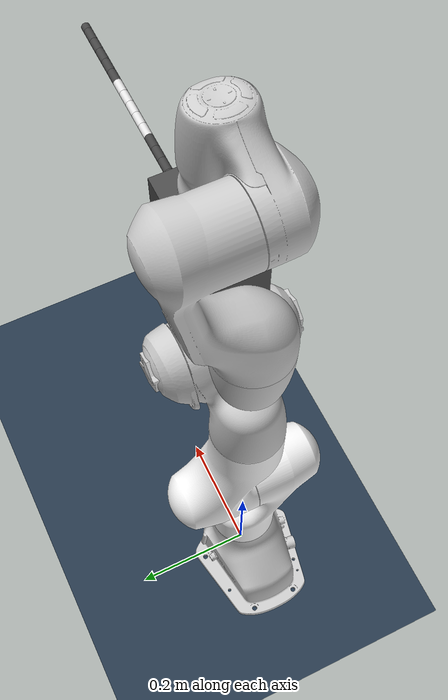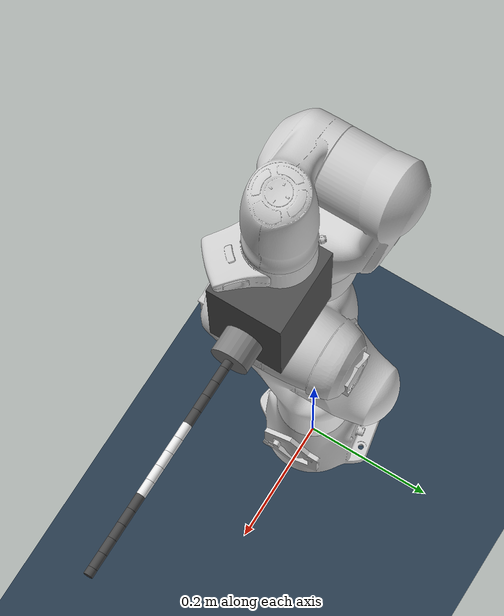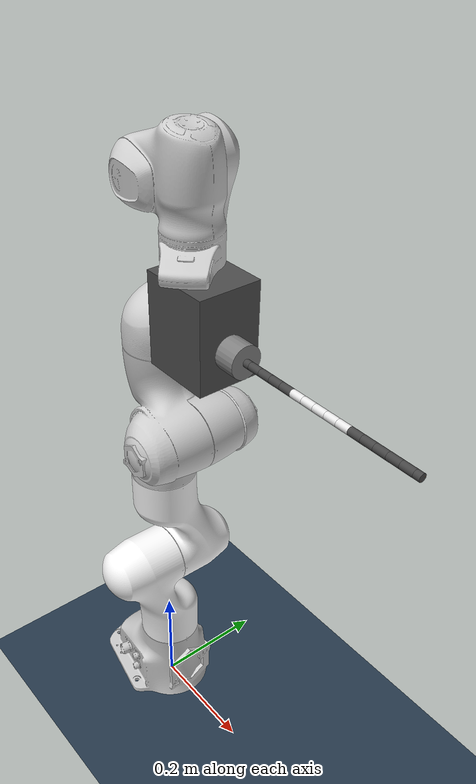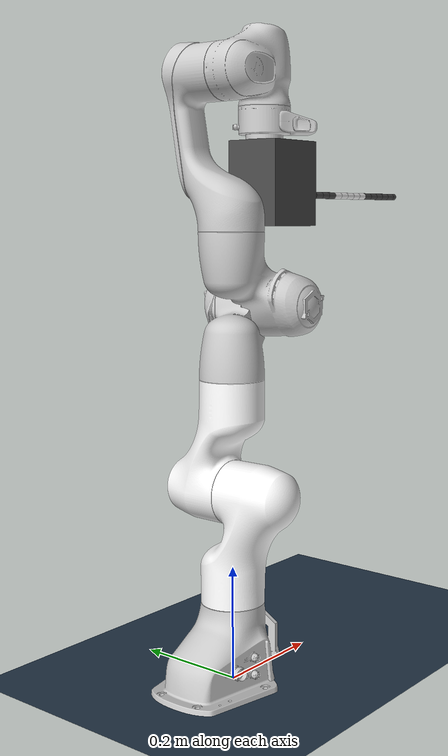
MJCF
<?xml version='1.0' encoding='utf-8'?>
<mujoco>
    <compiler angle="radian" autolimits="true" />
    <option gravity="0 0 0" noslip_iterations="1" />
    <default>
        <joint axis="0 0 1" limited="true" />
        <geom contype="0" conaffinity="0" condim="1" friction="1.0 0.005 0.0001" />
        <motor ctrllimited="true" ctrlrange="-80 80" />
        <default class="tdcr_collision">
            <geom contype="1" conaffinity="1" condim="3" friction="1.0 0.005 0.0001" solimp="0.8 0.95 0.001" />
        </default>
        <default class="planar_link">
            <joint stiffness="0.1963495408493621" damping="0.3" limited="false" axis="0 0 1" pos="0 0 0" type="hinge" />
        </default>
        <default class="vertical_link">
            <joint stiffness="0.1963495408493621" damping="0.3" limited="false" axis="0 -1 0" pos="0 0 0" type="hinge" />
        </default>
    </default>
    <asset>
        <material name="panda_white" rgba="1 1 1 1" shininess="0.4" specular="0.4" />
        <material name="panda" rgba="0.8 0.8 0.8 1" shininess="0.4" specular="0.4" />
        <material name="mount_adapter" rgba="0.3 0.3 0.3 1" shininess="0.2" specular="0.2" />
        <material name="mount_connector" rgba="0.5 0.5 0.5 1" shininess="0.3" specular="0.3" />
        <texture type="skybox" builtin="gradient" rgb1="1 1 1" rgb2=".6 .8 1" width="256" height="256" />
        <texture name="texplane" type="2d" builtin="checker" rgb1=".2 .3 .4" rgb2=".1 0.15 0.2" width="512" height="512" />
        <material name="MatGnd" reflectance="0.5" texture="texplane" texrepeat="1 1" texuniform="true" />
        <mesh name="link0" file="franka_assets/meshes/visual/link0.stl" />
        <mesh name="link1" file="franka_assets/meshes/visual/link1.stl" />
        <mesh name="link2" file="franka_assets/meshes/visual/link2.stl" />
        <mesh name="link3" file="franka_assets/meshes/visual/link3.stl" />
        <mesh name="link4" file="franka_assets/meshes/visual/link4.stl" />
        <mesh name="link5" file="franka_assets/meshes/visual/link5.stl" />
        <mesh name="link6" file="franka_assets/meshes/visual/link6.stl" />
        <mesh name="link7" file="franka_assets/meshes/visual/link7.stl" />
        <material name="matplane" texture="texplane" texrepeat="5 5" reflectance="0.5" texuniform="true" />
    </asset>
    <worldbody>
        <light directional="false" diffuse=".8 .8 .8" specular="0.3 0.3 0.3" pos="1  1 3" dir="-1 -1 -3" />
        <light directional="false" diffuse=".8 .8 .8" specular="0.3 0.3 0.3" pos="1 -1 3" dir="-1 1 -3" />
        <light directional="false" diffuse=".8 .8 .8" specular="0.3 0.3 0.3" pos="-1 0 3" dir="1 0 -3" />
        <geom name="ground" pos="0 0 0" size="5 5 10" material="MatGnd" type="plane" contype="1" conaffinity="1" />
        <body name="panda_link0">
            <geom type="mesh" material="panda" mesh="link0" />
            <inertial pos="-4.1018e-02 -1.4e-04 4.9974e-02" mass="6.29769e-01" fullinertia="3.15e-03 3.88e-03 4.285e-03 8.2904e-07 1.5e-04 8.2299e-06" />
            <body name="panda_link1" pos="0 0 0.333">
                <inertial pos="3.875e-03 2.081e-03 -4.762e-02" mass="4.970684" fullinertia="7.0337e-01 7.0661e-01 9.1170e-03 -1.3900e-04 6.7720e-03 1.9169e-02" />
                <joint name="panda_joint1" pos="0 0 0" axis="0 0 1" limited="true" range="-2.8973 2.8973" damping="100" />
                <geom type="mesh" material="panda_white" mesh="link1" />
                <body name="panda_link2" pos="0 0 0" quat="0.707107 -0.707107 0 0">
                    <inertial pos="-3.141e-03 -2.872e-02 3.495e-03" mass="0.646926" fullinertia="7.9620e-03 2.8110e-02 2.5995e-02 -3.9250e-03 1.0254e-02 7.0400e-04" />
                    <joint name="panda_joint2" pos="0 0 0" axis="0 0 1" limited="true" range="-1.7628 1.7628" damping="100" />
                    <geom type="mesh" material="panda_white" mesh="link2" />
                    <body name="panda_link3" pos="0 -0.316 0" quat="0.707107 0.707107 0 0">
                        <inertial pos="2.7518e-02 3.9252e-02 -6.6502e-02" mass="3.228604" fullinertia="3.7242e-02 3.6155e-02 1.0830e-02 -4.7610e-03 -1.1396e-02 -1.2805e-02" />
                        <joint name="panda_joint3" pos="0 0 0" axis="0 0 1" limited="true" range="-2.8973 2.8973" damping="100" />
                        <geom type="mesh" material="panda" mesh="link3" />
                        <body name="panda_link4" pos="0.0825 0 0" quat="0.707107 0.707107 0 0">
                            <inertial pos="-5.317e-02 1.04419e-01 2.7454e-02" mass="3.587895" fullinertia="2.5853e-02 1.9552e-02 2.8323e-02 7.7960e-03 -1.3320e-03 8.6410e-03" />
                            <joint name="panda_joint4" pos="0 0 0" axis="0 0 1" limited="true" range="-3.0718 -0.0698" damping="100" />
                            <geom type="mesh" material="panda" mesh="link4" />
                            <body name="panda_link5" pos="-0.0825 0.384 0" quat="0.707107 -0.707107 0 0">
                                <inertial pos="-1.1953e-02 4.1065e-02 -3.8437e-02" mass="1.225946" fullinertia="3.5549e-02 2.9474e-02 8.6270e-03 -2.1170e-03 -4.0370e-03 2.2900e-04" />
                                <joint name="panda_joint5" pos="0 0 0" axis="0 0 1" limited="true" range="-2.8973 2.8973" damping="10" />
                                <geom type="mesh" material="panda" mesh="link5" />
                                <body name="panda_link6" pos="0 0 0" quat="0.707107 0.707107 0 0">
                                    <inertial pos="6.0149e-02 -1.4117e-02 -1.0517e-02" mass="1.666555" fullinertia="1.9640e-03 4.3540e-03 5.4330e-03 1.0900e-04 -1.1580e-03 3.4100e-04" />
                                    <joint name="panda_joint6" pos="0 0 0" axis="0 0 1" limited="true" range="-0.0873 3.8223" damping="10" />
                                    <geom type="mesh" material="panda" mesh="link6" />
                                    <body name="panda_link7" pos="0.088 0 0" quat="0.707107 0.707107 0 0">
                                        <inertial pos="1.0517e-02 -4.252e-03 6.1597e-02" mass="7.35522e-01" fullinertia="1.2516e-02 1.0027e-02 4.8150e-03 -4.2800e-04 -1.1960e-03 -7.4100e-04" />
                                        <joint name="panda_joint7" pos="0 0 0" axis="0 0 1" limited="true" range="-2.8973 2.8973" damping="10" />
                                        <geom type="mesh" material="panda" mesh="link7" />
                                        <body name="panda_link8" pos="0 0 0.107">
                                            <body name="end_effector">
                                                <inertial pos="-1e-02 0 3e-02" mass="7.3e-01" diaginertia="1e-03 2.5e-03 1.7e-03" />
                                                <body name="mount" euler="0 -1.57079632679 0">
                                                    <body name="mount_adapter" pos="0 0 -0.0575">
                                                        <geom name="mount_adapter_box" type="box" pos="0.072 0 0.0345" size="0.072 0.05 0.0575" material="mount_adapter" contype="0" conaffinity="0" />
                                                    </body>
                                                    <body name="tdcr_mount" pos="0.09 0.0 -0.115" euler="0.0 1.5708 0.0">
                                                        <geom name="mount_connector_cylinder" type="cylinder" pos="-0.03 0 0" size="0.025 0.03" euler="0 1.5708 0" material="mount_connector" contype="0" conaffinity="0" />
                                                        <body name="link_0" pos="0 0 0">
                                                            <geom fromto="0 0 0 0.010000000000000002 0 0" size="0.006" type="cylinder" rgba="0.274 0.274 0.274 1.000" mass="0.0005923158789078196" name="geom_0" class="tdcr_collision" />
                                                            <joint class="planar_link" name="joint_0_x" />
                                                            <joint class="vertical_link" name="joint_0_z" />
                                                            <site name="l_0_base_seg_0_tendon_0" pos="0 0.004 0.0" rgba="0 0 0 0" />
                                                            <site name="l_0_base_seg_0_tendon_1" pos="0 -0.002 0.003" rgba="0 0 0 0" />
                                                            <site name="l_0_base_seg_0_tendon_2" pos="0 -0.002 -0.003" rgba="0 0 0 0" />
                                                            <body name="link_1" pos="0.010000000000000002 0 0">
                                                                <geom fromto="0 0 0 0.020000000000000004 0 0" size="0.006" type="cylinder" rgba="0.274 0.274 0.274 1.000" mass="0.0005923158789078196" name="geom_1" class="tdcr_collision" />
                                                                <joint class="planar_link" name="joint_1_x" />
                                                                <joint class="vertical_link" name="joint_1_z" />
                                                                <site name="l_1_seg_0_tendon_0" pos="0.010000000000000002 0.004 0.0" rgba="0 0 0 0" />
                                                                <site name="l_1_seg_0_tendon_1" pos="0.010000000000000002 -0.002 0.003" rgba="0 0 0 0" />
                                                                <site name="l_1_seg_0_tendon_2" pos="0.010000000000000002 -0.002 -0.003" rgba="0 0 0 0" />
                                                                <body name="link_2" pos="0.020000000000000004 0 0">
                                                                    <geom fromto="0 0 0 0.020000000000000004 0 0" size="0.006" type="cylinder" rgba="0.274 0.274 0.274 1.000" mass="0.0005923158789078196" name="geom_2" class="tdcr_collision" />
                                                                    <joint class="planar_link" name="joint_2_x" />
                                                                    <joint class="vertical_link" name="joint_2_z" />
                                                                    <site name="l_2_seg_0_tendon_0" pos="0.010000000000000002 0.004 0.0" rgba="0 0 0 0" />
                                                                    <site name="l_2_seg_0_tendon_1" pos="0.010000000000000002 -0.002 0.003" rgba="0 0 0 0" />
                                                                    <site name="l_2_seg_0_tendon_2" pos="0.010000000000000002 -0.002 -0.003" rgba="0 0 0 0" />
                                                                    <body name="link_3" pos="0.020000000000000004 0 0">
                                                                        <geom fromto="0 0 0 0.020000000000000004 0 0" size="0.006" type="cylinder" rgba="0.274 0.274 0.274 1.000" mass="0.0005923158789078196" name="geom_3" class="tdcr_collision" />
                                                                        <joint class="planar_link" name="joint_3_x" />
                                                                        <joint class="vertical_link" name="joint_3_z" />
                                                                        <site name="l_3_seg_0_tendon_0" pos="0.010000000000000002 0.004 0.0" rgba="0 0 0 0" />
                                                                        <site name="l_3_seg_0_tendon_1" pos="0.010000000000000002 -0.002 0.003" rgba="0 0 0 0" />
                                                                        <site name="l_3_seg_0_tendon_2" pos="0.010000000000000002 -0.002 -0.003" rgba="0 0 0 0" />
                                                                        <body name="link_4" pos="0.020000000000000004 0 0">
                                                                            <geom fromto="0 0 0 0.020000000000000004 0 0" size="0.006" type="cylinder" rgba="0.274 0.274 0.274 1.000" mass="0.0005923158789078196" name="geom_4" class="tdcr_collision" />
                                                                            <joint class="planar_link" name="joint_4_x" />
                                                                            <joint class="vertical_link" name="joint_4_z" />
                                                                            <site name="l_4_seg_0_tendon_0" pos="0.010000000000000002 0.004 0.0" rgba="0 0 0 0" />
                                                                            <site name="l_4_seg_0_tendon_1" pos="0.010000000000000002 -0.002 0.003" rgba="0 0 0 0" />
                                                                            <site name="l_4_seg_0_tendon_2" pos="0.010000000000000002 -0.002 -0.003" rgba="0 0 0 0" />
                                                                            <body name="link_5" pos="0.020000000000000004 0 0">
                                                                                <geom fromto="0 0 0 0.020000000000000004 0 0" size="0.006" type="cylinder" rgba="0.910 0.910 0.910 1.000" mass="0.0005923158789078196" name="geom_5" class="tdcr_collision" />
                                                                                <joint class="planar_link" name="joint_5_x" />
                                                                                <joint class="vertical_link" name="joint_5_z" />
                                                                                <site name="l_5_seg_0_tendon_0" pos="0.010000000000000002 0.004 0.0" rgba="0 0 0 0" />
                                                                                <site name="l_5_seg_0_tendon_1" pos="0.010000000000000002 -0.002 0.003" rgba="0 0 0 0" />
                                                                                <site name="l_5_seg_0_tendon_2" pos="0.010000000000000002 -0.002 -0.003" rgba="0 0 0 0" />
                                                                                <site name="l_5_seg_1_tendon_0" pos="0.010000000000000002 0.003464099166331756 0.0020000042414504114" rgba="0 0 0 0" />
                                                                                <site name="l_5_seg_1_tendon_1" pos="0.010000000000000002 -0.0032320527642536864 0.0015980722540236115" rgba="0 0 0 0" />
                                                                                <site name="l_5_seg_1_tendon_2" pos="0.010000000000000002 -0.00023204640207806948 -0.003598076495474023" rgba="0 0 0 0" />
                                                                                <body name="link_6" pos="0.020000000000000004 0 0">
                                                                                    <geom fromto="0 0 0 0.020000000000000004 0 0" size="0.006" type="cylinder" rgba="0.910 0.910 0.910 1.000" mass="0.0005923158789078196" name="geom_6" class="tdcr_collision" />
                                                                                    <joint class="planar_link" name="joint_6_x" />
                                                                                    <joint class="vertical_link" name="joint_6_z" />
                                                                                    <site name="l_6_seg_1_tendon_0" pos="0.010000000000000002 0.003464099166331756 0.0020000042414504114" rgba="0 0 0 0" />
                                                                                    <site name="l_6_seg_1_tendon_1" pos="0.010000000000000002 -0.0032320527642536864 0.0015980722540236115" rgba="0 0 0 0" />
                                                                                    <site name="l_6_seg_1_tendon_2" pos="0.010000000000000002 -0.00023204640207806948 -0.003598076495474023" rgba="0 0 0 0" />
                                                                                    <body name="link_7" pos="0.020000000000000004 0 0">
                                                                                        <geom fromto="0 0 0 0.020000000000000004 0 0" size="0.006" type="cylinder" rgba="0.910 0.910 0.910 1.000" mass="0.0005923158789078196" name="geom_7" class="tdcr_collision" />
                                                                                        <joint class="planar_link" name="joint_7_x" />
                                                                                        <joint class="vertical_link" name="joint_7_z" />
                                                                                        <site name="force_site_mid" pos="0.010000000000000009 0 0" size="0.003" rgba="0 1 0 0.8" type="sphere" />
                                                                                        <site name="l_7_seg_1_tendon_0" pos="0.010000000000000002 0.003464099166331756 0.0020000042414504114" rgba="0 0 0 0" />
                                                                                        <site name="l_7_seg_1_tendon_1" pos="0.010000000000000002 -0.0032320527642536864 0.0015980722540236115" rgba="0 0 0 0" />
                                                                                        <site name="l_7_seg_1_tendon_2" pos="0.010000000000000002 -0.00023204640207806948 -0.003598076495474023" rgba="0 0 0 0" />
                                                                                        <body name="link_8" pos="0.020000000000000004 0 0">
                                                                                            <geom fromto="0 0 0 0.020000000000000004 0 0" size="0.006" type="cylinder" rgba="0.910 0.910 0.910 1.000" mass="0.0005923158789078196" name="geom_8" class="tdcr_collision" />
                                                                                            <joint class="planar_link" name="joint_8_x" />
                                                                                            <joint class="vertical_link" name="joint_8_z" />
                                                                                            <site name="l_8_seg_1_tendon_0" pos="0.010000000000000002 0.003464099166331756 0.0020000042414504114" rgba="0 0 0 0" />
                                                                                            <site name="l_8_seg_1_tendon_1" pos="0.010000000000000002 -0.0032320527642536864 0.0015980722540236115" rgba="0 0 0 0" />
                                                                                            <site name="l_8_seg_1_tendon_2" pos="0.010000000000000002 -0.00023204640207806948 -0.003598076495474023" rgba="0 0 0 0" />
                                                                                            <body name="link_9" pos="0.020000000000000004 0 0">
                                                                                                <geom fromto="0 0 0 0.020000000000000004 0 0" size="0.006" type="cylinder" rgba="0.910 0.910 0.910 1.000" mass="0.0005923158789078196" name="geom_9" class="tdcr_collision" />
                                                                                                <joint class="planar_link" name="joint_9_x" />
                                                                                                <joint class="vertical_link" name="joint_9_z" />
                                                                                                <site name="l_9_seg_1_tendon_0" pos="0.010000000000000002 0.003464099166331756 0.0020000042414504114" rgba="0 0 0 0" />
                                                                                                <site name="l_9_seg_1_tendon_1" pos="0.010000000000000002 -0.0032320527642536864 0.0015980722540236115" rgba="0 0 0 0" />
                                                                                                <site name="l_9_seg_1_tendon_2" pos="0.010000000000000002 -0.00023204640207806948 -0.003598076495474023" rgba="0 0 0 0" />
                                                                                                <body name="link_10" pos="0.020000000000000004 0 0">
                                                                                                    <geom fromto="0 0 0 0.020000000000000004 0 0" size="0.006" type="cylinder" rgba="0.274 0.274 0.274 1.000" mass="0.0005923158789078196" name="geom_10" class="tdcr_collision" />
                                                                                                    <joint class="planar_link" name="joint_10_x" />
                                                                                                    <joint class="vertical_link" name="joint_10_z" />
                                                                                                    <site name="l_10_seg_1_tendon_0" pos="0.010000000000000002 0.003464099166331756 0.0020000042414504114" rgba="0 0 0 0" />
                                                                                                    <site name="l_10_seg_1_tendon_1" pos="0.010000000000000002 -0.0032320527642536864 0.0015980722540236115" rgba="0 0 0 0" />
                                                                                                    <site name="l_10_seg_1_tendon_2" pos="0.010000000000000002 -0.00023204640207806948 -0.003598076495474023" rgba="0 0 0 0" />
                                                                                                    <site name="l_10_seg_2_tendon_0" pos="0.010000000000000002 0.0019999915170901827 0.0034641065127341726" rgba="0 0 0 0" />
                                                                                                    <site name="l_10_seg_2_tendon_1" pos="0.010000000000000002 -0.003598075643095721 -0.00023205961854944925" rgba="0 0 0 0" />
                                                                                                    <site name="l_10_seg_2_tendon_2" pos="0.010000000000000002 0.001598084126005538 -0.0032320468941847234" rgba="0 0 0 0" />
                                                                                                    <body name="link_11" pos="0.020000000000000004 0 0">
                                                                                                        <geom fromto="0 0 0 0.020000000000000004 0 0" size="0.006" type="cylinder" rgba="0.274 0.274 0.274 1.000" mass="0.0005923158789078196" name="geom_11" class="tdcr_collision" />
                                                                                                        <joint class="planar_link" name="joint_11_x" />
                                                                                                        <joint class="vertical_link" name="joint_11_z" />
                                                                                                        <site name="l_11_seg_2_tendon_0" pos="0.010000000000000002 0.0019999915170901827 0.0034641065127341726" rgba="0 0 0 0" />
                                                                                                        <site name="l_11_seg_2_tendon_1" pos="0.010000000000000002 -0.003598075643095721 -0.00023205961854944925" rgba="0 0 0 0" />
                                                                                                        <site name="l_11_seg_2_tendon_2" pos="0.010000000000000002 0.001598084126005538 -0.0032320468941847234" rgba="0 0 0 0" />
                                                                                                        <body name="link_12" pos="0.020000000000000004 0 0">
                                                                                                            <geom fromto="0 0 0 0.020000000000000004 0 0" size="0.006" type="cylinder" rgba="0.274 0.274 0.274 1.000" mass="0.0005923158789078196" name="geom_12" class="tdcr_collision" />
                                                                                                            <joint class="planar_link" name="joint_12_x" />
                                                                                                            <joint class="vertical_link" name="joint_12_z" />
                                                                                                            <site name="l_12_seg_2_tendon_0" pos="0.010000000000000002 0.0019999915170901827 0.0034641065127341726" rgba="0 0 0 0" />
                                                                                                            <site name="l_12_seg_2_tendon_1" pos="0.010000000000000002 -0.003598075643095721 -0.00023205961854944925" rgba="0 0 0 0" />
                                                                                                            <site name="l_12_seg_2_tendon_2" pos="0.010000000000000002 0.001598084126005538 -0.0032320468941847234" rgba="0 0 0 0" />
                                                                                                            <body name="link_13" pos="0.020000000000000004 0 0">
                                                                                                                <geom fromto="0 0 0 0.020000000000000004 0 0" size="0.006" type="cylinder" rgba="0.274 0.274 0.274 1.000" mass="0.0005923158789078196" name="geom_13" class="tdcr_collision" />
                                                                                                                <joint class="planar_link" name="joint_13_x" />
                                                                                                                <joint class="vertical_link" name="joint_13_z" />
                                                                                                                <site name="l_13_seg_2_tendon_0" pos="0.010000000000000002 0.0019999915170901827 0.0034641065127341726" rgba="0 0 0 0" />
                                                                                                                <site name="l_13_seg_2_tendon_1" pos="0.010000000000000002 -0.003598075643095721 -0.00023205961854944925" rgba="0 0 0 0" />
                                                                                                                <site name="l_13_seg_2_tendon_2" pos="0.010000000000000002 0.001598084126005538 -0.0032320468941847234" rgba="0 0 0 0" />
                                                                                                                <body name="link_14" pos="0.020000000000000004 0 0">
                                                                                                                    <geom fromto="0 0 0 0.020000000000000004 0 0" size="0.006" type="cylinder" rgba="0.274 0.274 0.274 1.000" mass="0.0005923158789078196" name="geom_14" class="tdcr_collision" />
                                                                                                                    <joint class="planar_link" name="joint_14_x" />
                                                                                                                    <joint class="vertical_link" name="joint_14_z" />
                                                                                                                    <site name="l_14_seg_2_tendon_0" pos="0.010000000000000002 0.0019999915170901827 0.0034641065127341726" rgba="0 0 0 0" />
                                                                                                                    <site name="l_14_seg_2_tendon_1" pos="0.010000000000000002 -0.003598075643095721 -0.00023205961854944925" rgba="0 0 0 0" />
                                                                                                                    <site name="l_14_seg_2_tendon_2" pos="0.010000000000000002 0.001598084126005538 -0.0032320468941847234" rgba="0 0 0 0" />
                                                                                                                    <body name="link_15" pos="0.020000000000000004 0 0">
                                                                                                                        <geom fromto="0 0 0 0.010000000000000002 0 0" size="0.006" type="cylinder" rgba="0.274 0.274 0.274 1.000" mass="0.0005923158789078196" name="geom_15" class="tdcr_collision" />
                                                                                                                        <joint class="planar_link" name="joint_15_x" />
                                                                                                                        <joint class="vertical_link" name="joint_15_z" />
                                                                                                                        <site name="l_15_seg_2_tendon_0" pos="0.010000000000000002 0.0019999915170901827 0.0034641065127341726" rgba="0 0 0 0" />
                                                                                                                        <site name="l_15_seg_2_tendon_1" pos="0.010000000000000002 -0.003598075643095721 -0.00023205961854944925" rgba="0 0 0 0" />
                                                                                                                        <site name="l_15_seg_2_tendon_2" pos="0.010000000000000002 0.001598084126005538 -0.0032320468941847234" rgba="0 0 0 0" />
                                                                                                                    </body>
                                                                                                                </body>
                                                                                                            </body>
                                                                                                        </body>
                                                                                                    </body>
                                                                                                </body>
                                                                                            </body>
                                                                                        </body>
                                                                                    </body>
                                                                                </body>
                                                                            </body>
                                                                        </body>
                                                                    </body>
                                                                </body>
                                                            </body>
                                                        </body>
                                                    </body>
                                                </body>
                                            </body>
                                        </body>
                                    </body>
                                </body>
                            </body>
                        </body>
                    </body>
                </body>
            </body>
        </body>
    </worldbody>
    <actuator>
        <position name="panda_joint1" joint="panda_joint1" kp="870" forcerange="-87 87" ctrlrange="-2.8973 2.8973" />
        <position name="panda_joint2" joint="panda_joint2" kp="870" forcerange="-87 87" ctrlrange="-1.7628 1.7628" />
        <position name="panda_joint3" joint="panda_joint3" kp="870" forcerange="-87 87" ctrlrange="-2.8973 2.8973" />
        <position name="panda_joint4" joint="panda_joint4" kp="870" forcerange="-87 87" ctrlrange="-3.0718 -0.4" />
        <position name="panda_joint5" joint="panda_joint5" kp="120" forcerange="-12 12" ctrlrange="-2.8973 2.8973" />
        <position name="panda_joint6" joint="panda_joint6" kp="120" forcerange="-12 12" ctrlrange="-0.0873 3.8223" />
        <position name="panda_joint7" joint="panda_joint7" kp="120" forcerange="-12 12" ctrlrange="-2.9671 2.9671" />
        <position name="seg_0_ten_0" tendon="seg_0_tendon_0" ctrlrange="0.05 0.15000000000000002" kp="100000" timeconst="0.0" forcelimited="true" forcerange="-100 0" />
        <position name="seg_0_ten_1" tendon="seg_0_tendon_1" ctrlrange="0.05 0.15000000000000002" kp="100000" timeconst="0.0" forcelimited="true" forcerange="-100 0" />
        <position name="seg_0_ten_2" tendon="seg_0_tendon_2" ctrlrange="0.05 0.15000000000000002" kp="100000" timeconst="0.0" forcelimited="true" forcerange="-100 0" />
        <position name="seg_1_ten_0" tendon="seg_1_tendon_0" ctrlrange="0.05 0.15000000000000002" kp="100000" timeconst="0.0" forcelimited="true" forcerange="-100 0" />
        <position name="seg_1_ten_1" tendon="seg_1_tendon_1" ctrlrange="0.05 0.15000000000000002" kp="100000" timeconst="0.0" forcelimited="true" forcerange="-100 0" />
        <position name="seg_1_ten_2" tendon="seg_1_tendon_2" ctrlrange="0.05 0.15000000000000002" kp="100000" timeconst="0.0" forcelimited="true" forcerange="-100 0" />
        <position name="seg_2_ten_0" tendon="seg_2_tendon_0" ctrlrange="0.05 0.15000000000000002" kp="100000" timeconst="0.0" forcelimited="true" forcerange="-100 0" />
        <position name="seg_2_ten_1" tendon="seg_2_tendon_1" ctrlrange="0.05 0.15000000000000002" kp="100000" timeconst="0.0" forcelimited="true" forcerange="-100 0" />
        <position name="seg_2_ten_2" tendon="seg_2_tendon_2" ctrlrange="0.05 0.15000000000000002" kp="100000" timeconst="0.0" forcelimited="true" forcerange="-100 0" />
    </actuator>
    <tendon>
        <spatial name="seg_0_tendon_0" rgba="0.4 0.6 0.8 1" width="0.001">
            <site site="l_0_base_seg_0_tendon_0" />
            <site site="l_1_seg_0_tendon_0" />
            <site site="l_2_seg_0_tendon_0" />
            <site site="l_3_seg_0_tendon_0" />
            <site site="l_4_seg_0_tendon_0" />
            <site site="l_5_seg_0_tendon_0" />
        </spatial>
        <spatial name="seg_0_tendon_1" rgba="0.4 0.6 0.8 1" width="0.001">
            <site site="l_0_base_seg_0_tendon_1" />
            <site site="l_1_seg_0_tendon_1" />
            <site site="l_2_seg_0_tendon_1" />
            <site site="l_3_seg_0_tendon_1" />
            <site site="l_4_seg_0_tendon_1" />
            <site site="l_5_seg_0_tendon_1" />
        </spatial>
        <spatial name="seg_0_tendon_2" rgba="0.4 0.6 0.8 1" width="0.001">
            <site site="l_0_base_seg_0_tendon_2" />
            <site site="l_1_seg_0_tendon_2" />
            <site site="l_2_seg_0_tendon_2" />
            <site site="l_3_seg_0_tendon_2" />
            <site site="l_4_seg_0_tendon_2" />
            <site site="l_5_seg_0_tendon_2" />
        </spatial>
        <spatial name="seg_1_tendon_0" rgba="0.5 0.7 0.5 1" width="0.001">
            <site site="l_5_seg_1_tendon_0" />
            <site site="l_6_seg_1_tendon_0" />
            <site site="l_7_seg_1_tendon_0" />
            <site site="l_8_seg_1_tendon_0" />
            <site site="l_9_seg_1_tendon_0" />
            <site site="l_10_seg_1_tendon_0" />
        </spatial>
        <spatial name="seg_1_tendon_1" rgba="0.5 0.7 0.5 1" width="0.001">
            <site site="l_5_seg_1_tendon_1" />
            <site site="l_6_seg_1_tendon_1" />
            <site site="l_7_seg_1_tendon_1" />
            <site site="l_8_seg_1_tendon_1" />
            <site site="l_9_seg_1_tendon_1" />
            <site site="l_10_seg_1_tendon_1" />
        </spatial>
        <spatial name="seg_1_tendon_2" rgba="0.5 0.7 0.5 1" width="0.001">
            <site site="l_5_seg_1_tendon_2" />
            <site site="l_6_seg_1_tendon_2" />
            <site site="l_7_seg_1_tendon_2" />
            <site site="l_8_seg_1_tendon_2" />
            <site site="l_9_seg_1_tendon_2" />
            <site site="l_10_seg_1_tendon_2" />
        </spatial>
        <spatial name="seg_2_tendon_0" rgba="0.9 0.6 0.3 1" width="0.001">
            <site site="l_10_seg_2_tendon_0" />
            <site site="l_11_seg_2_tendon_0" />
            <site site="l_12_seg_2_tendon_0" />
            <site site="l_13_seg_2_tendon_0" />
            <site site="l_14_seg_2_tendon_0" />
            <site site="l_15_seg_2_tendon_0" />
        </spatial>
        <spatial name="seg_2_tendon_1" rgba="0.9 0.6 0.3 1" width="0.001">
            <site site="l_10_seg_2_tendon_1" />
            <site site="l_11_seg_2_tendon_1" />
            <site site="l_12_seg_2_tendon_1" />
            <site site="l_13_seg_2_tendon_1" />
            <site site="l_14_seg_2_tendon_1" />
            <site site="l_15_seg_2_tendon_1" />
        </spatial>
        <spatial name="seg_2_tendon_2" rgba="0.9 0.6 0.3 1" width="0.001">
            <site site="l_10_seg_2_tendon_2" />
            <site site="l_11_seg_2_tendon_2" />
            <site site="l_12_seg_2_tendon_2" />
            <site site="l_13_seg_2_tendon_2" />
            <site site="l_14_seg_2_tendon_2" />
            <site site="l_15_seg_2_tendon_2" />
        </spatial>
    </tendon>
    <contact>
        <exclude body1="link_0" body2="link_1" />
        <exclude body1="link_0" body2="link_2" />
        <exclude body1="link_0" body2="link_3" />
        <exclude body1="link_0" body2="link_1" />
        <exclude body1="link_0" body2="link_2" />
        <exclude body1="link_0" body2="link_3" />
        <exclude body1="link_0" body2="link_1" />
        <exclude body1="link_1" body2="link_2" />
        <exclude body1="link_1" body2="link_3" />
        <exclude body1="link_1" body2="link_4" />
        <exclude body1="link_0" body2="link_2" />
        <exclude body1="link_1" body2="link_2" />
        <exclude body1="link_2" body2="link_3" />
        <exclude body1="link_2" body2="link_4" />
        <exclude body1="link_2" body2="link_5" />
        <exclude body1="link_0" body2="link_3" />
        <exclude body1="link_1" body2="link_3" />
        <exclude body1="link_2" body2="link_3" />
        <exclude body1="link_3" body2="link_4" />
        <exclude body1="link_3" body2="link_5" />
        <exclude body1="link_3" body2="link_6" />
        <exclude body1="link_1" body2="link_4" />
        <exclude body1="link_2" body2="link_4" />
        <exclude body1="link_3" body2="link_4" />
        <exclude body1="link_4" body2="link_5" />
        <exclude body1="link_4" body2="link_6" />
        <exclude body1="link_4" body2="link_7" />
        <exclude body1="link_2" body2="link_5" />
        <exclude body1="link_3" body2="link_5" />
        <exclude body1="link_4" body2="link_5" />
        <exclude body1="link_5" body2="link_6" />
        <exclude body1="link_5" body2="link_7" />
        <exclude body1="link_5" body2="link_8" />
        <exclude body1="link_3" body2="link_6" />
        <exclude body1="link_4" body2="link_6" />
        <exclude body1="link_5" body2="link_6" />
        <exclude body1="link_6" body2="link_7" />
        <exclude body1="link_6" body2="link_8" />
        <exclude body1="link_6" body2="link_9" />
        <exclude body1="link_4" body2="link_7" />
        <exclude body1="link_5" body2="link_7" />
        <exclude body1="link_6" body2="link_7" />
        <exclude body1="link_7" body2="link_8" />
        <exclude body1="link_7" body2="link_9" />
        <exclude body1="link_7" body2="link_10" />
        <exclude body1="link_5" body2="link_8" />
        <exclude body1="link_6" body2="link_8" />
        <exclude body1="link_7" body2="link_8" />
        <exclude body1="link_8" body2="link_9" />
        <exclude body1="link_8" body2="link_10" />
        <exclude body1="link_8" body2="link_11" />
        <exclude body1="link_6" body2="link_9" />
        <exclude body1="link_7" body2="link_9" />
        <exclude body1="link_8" body2="link_9" />
        <exclude body1="link_9" body2="link_10" />
        <exclude body1="link_9" body2="link_11" />
        <exclude body1="link_9" body2="link_12" />
        <exclude body1="link_7" body2="link_10" />
        <exclude body1="link_8" body2="link_10" />
        <exclude body1="link_9" body2="link_10" />
        <exclude body1="link_10" body2="link_11" />
        <exclude body1="link_10" body2="link_12" />
        <exclude body1="link_10" body2="link_13" />
        <exclude body1="link_8" body2="link_11" />
        <exclude body1="link_9" body2="link_11" />
        <exclude body1="link_10" body2="link_11" />
        <exclude body1="link_11" body2="link_12" />
        <exclude body1="link_11" body2="link_13" />
        <exclude body1="link_9" body2="link_12" />
        <exclude body1="link_10" body2="link_12" />
        <exclude body1="link_11" body2="link_12" />
        <exclude body1="link_12" body2="link_13" />
        <exclude body1="link_10" body2="link_13" />
        <exclude body1="link_11" body2="link_13" />
        <exclude body1="link_12" body2="link_13" />
    </contact>
    <keyframe>
        <key name="pretension" ctrl="0 0 0 -1.5707963267948966 0 1.5707963267948966 0 0.1 0.1 0.1 0.1 0.1 0.1 0.1 0.1 0.1" />
    </keyframe>
</mujoco>
